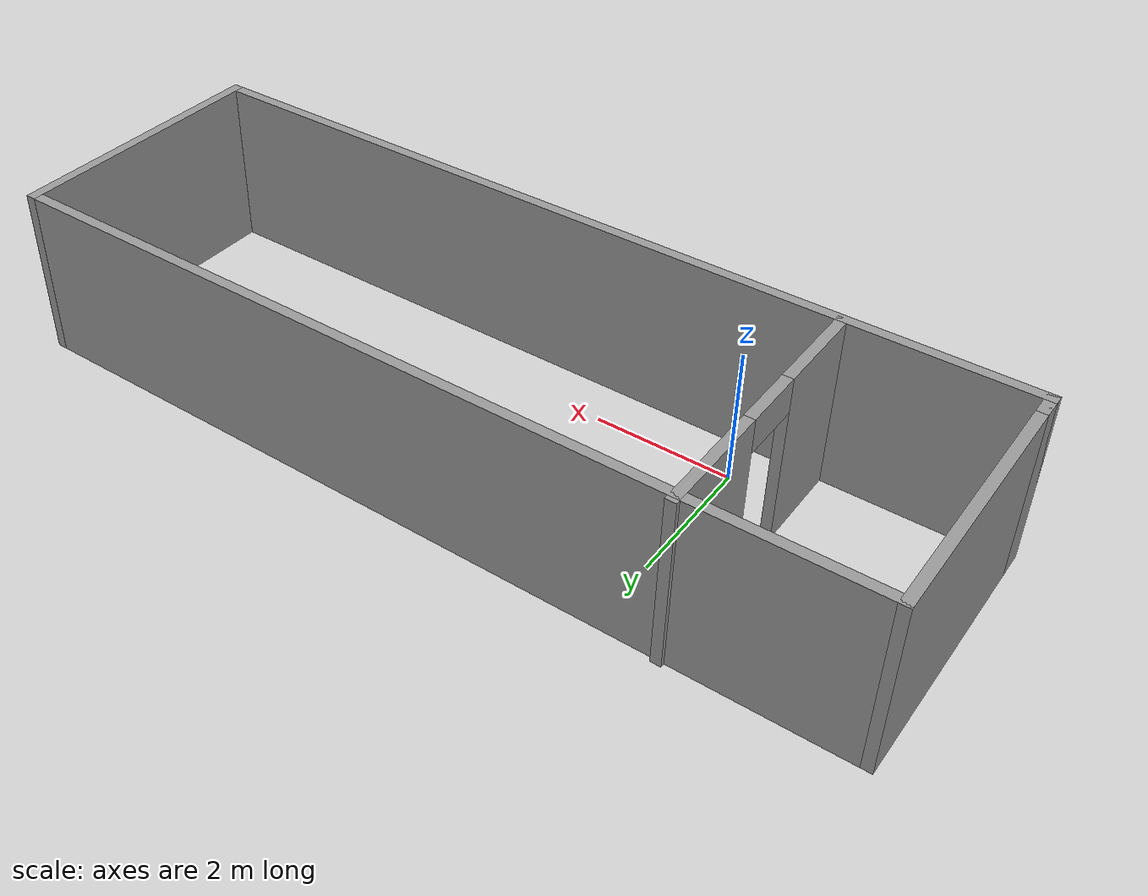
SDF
<?xml version='1.0'?>
<sdf version='1.7'>
  <model name='housemini'>
    <pose>2.85 1.21534 0 0 -0 0</pose>
    <link name='Wall_0'>
      <collision name='Wall_0_Collision'>
        <geometry>
          <box>
            <size>3.75 0.15 2.5</size>
          </box>
        </geometry>
        <pose>0 0 1.25 0 -0 0</pose>
      </collision>
      <visual name='Wall_0_Visual'>
        <pose>0 0 1.25 0 -0 0</pose>
        <geometry>
          <box>
            <size>3.75 0.15 2.5</size>
          </box>
        </geometry>
        <material>
          <script>
            <uri>file://media/materials/scripts/gazebo.material</uri>
            <name>Gazebo/Grey</name>
          </script>
          <ambient>1 1 1 1</ambient>
        </material>
        <meta>
          <layer>0</layer>
        </meta>
      </visual>
      <pose>-6.3 0.094662 0 0 -0 1.5708</pose>
    </link>
    <link name='Wall_1'>
      <collision name='Wall_1_Collision'>
        <geometry>
          <box>
            <size>12.75 0.15 2.5</size>
          </box>
        </geometry>
        <pose>0 0 1.25 0 -0 0</pose>
      </collision>
      <visual name='Wall_1_Visual'>
        <pose>0 0 1.25 0 -0 0</pose>
        <geometry>
          <box>
            <size>12.75 0.15 2.5</size>
          </box>
        </geometry>
        <material>
          <script>
            <uri>file://media/materials/scripts/gazebo.material</uri>
            <name>Gazebo/Grey</name>
          </script>
          <ambient>1 1 1 1</ambient>
        </material>
        <meta>
          <layer>0</layer>
        </meta>
      </visual>
      <pose>-0 1.89466 0 0 -0 0</pose>
    </link>
    <link name='Wall_2'>
      <collision name='Wall_2_Collision'>
        <geometry>
          <box>
            <size>4 0.15 2.5</size>
          </box>
        </geometry>
        <pose>0 0 1.25 0 -0 0</pose>
      </collision>
      <visual name='Wall_2_Visual'>
        <pose>0 0 1.25 0 -0 0</pose>
        <geometry>
          <box>
            <size>4 0.15 2.5</size>
          </box>
        </geometry>
        <material>
          <script>
            <uri>file://media/materials/scripts/gazebo.material</uri>
            <name>Gazebo/Grey</name>
          </script>
          <ambient>1 1 1 1</ambient>
        </material>
        <meta>
          <layer>0</layer>
        </meta>
      </visual>
      <pose>6.3 -0.030338 0 0 -0 -1.5708</pose>
    </link>
    <link name='Wall_3'>
      <collision name='Wall_3_Collision'>
        <geometry>
          <box>
            <size>12.75 0.15 2.5</size>
          </box>
        </geometry>
        <pose>0 0 1.25 0 -0 0</pose>
      </collision>
      <visual name='Wall_3_Visual'>
        <pose>0 0 1.25 0 -0 0</pose>
        <geometry>
          <box>
            <size>12.75 0.15 2.5</size>
          </box>
        </geometry>
        <material>
          <script>
            <uri>file://media/materials/scripts/gazebo.material</uri>
            <name>Gazebo/Grey</name>
          </script>
          <ambient>1 1 1 1</ambient>
        </material>
        <meta>
          <layer>0</layer>
        </meta>
      </visual>
      <pose>-0 -1.95534 0 0 -0 3.14159</pose>
    </link>
    <link name='Wall_4'>
      <collision name='Wall_4_Collision'>
        <geometry>
          <box>
            <size>0.4 0.15 2.5</size>
          </box>
        </geometry>
        <pose>0 0 1.25 0 -0 0</pose>
      </collision>
      <visual name='Wall_4_Visual'>
        <pose>0 0 1.25 0 -0 0</pose>
        <geometry>
          <box>
            <size>0.4 0.15 2.5</size>
          </box>
        </geometry>
        <material>
          <script>
            <uri>file://media/materials/scripts/gazebo.material</uri>
            <name>Gazebo/Grey</name>
          </script>
          <ambient>1 1 1 1</ambient>
        </material>
        <meta>
          <layer>0</layer>
        </meta>
      </visual>
      <pose>-6.3 -1.83034 0 0 -0 1.5708</pose>
    </link>
    <link name='Wall_6'>
      <pose>-3.73449 0.030338 0 0 -0 -1.5708</pose>
      <visual name='Wall_6_Visual_0'>
        <pose>-1.16091 0 1.25 0 -0 0</pose>
        <geometry>
          <box>
            <size>1.67818 0.15 2.5</size>
          </box>
        </geometry>
        <material>
          <script>
            <uri>file://media/materials/scripts/gazebo.material</uri>
            <name>Gazebo/Grey</name>
          </script>
          <ambient>1 1 1 1</ambient>
        </material>
        <meta>
          <layer>0</layer>
        </meta>
      </visual>
      <collision name='Wall_6_Collision_0'>
        <geometry>
          <box>
            <size>1.67818 0.15 2.5</size>
          </box>
        </geometry>
        <pose>-1.16091 0 1.25 0 -0 0</pose>
      </collision>
      <visual name='Wall_6_Visual_1'>
        <pose>1.28909 0 1.25 0 -0 0</pose>
        <geometry>
          <box>
            <size>1.42182 0.15 2.5</size>
          </box>
        </geometry>
        <material>
          <script>
            <uri>file://media/materials/scripts/gazebo.material</uri>
            <name>Gazebo/Grey</name>
          </script>
          <ambient>1 1 1 1</ambient>
        </material>
        <meta>
          <layer>0</layer>
        </meta>
      </visual>
      <collision name='Wall_6_Collision_1'>
        <geometry>
          <box>
            <size>1.42182 0.15 2.5</size>
          </box>
        </geometry>
        <pose>1.28909 0 1.25 0 -0 0</pose>
      </collision>
      <visual name='Wall_6_Visual_2'>
        <pose>0.128181 0 2.25 0 -0 0</pose>
        <geometry>
          <box>
            <size>0.9 0.15 0.5</size>
          </box>
        </geometry>
        <material>
          <script>
            <uri>file://media/materials/scripts/gazebo.material</uri>
            <name>Gazebo/Grey</name>
          </script>
          <ambient>1 1 1 1</ambient>
        </material>
        <meta>
          <layer>0</layer>
        </meta>
      </visual>
      <collision name='Wall_6_Collision_2'>
        <geometry>
          <box>
            <size>0.9 0.15 0.5</size>
          </box>
        </geometry>
        <pose>0.128181 0 2.25 0 -0 0</pose>
      </collision>
    </link>
    <static>1</static>
  </model>
</sdf>
